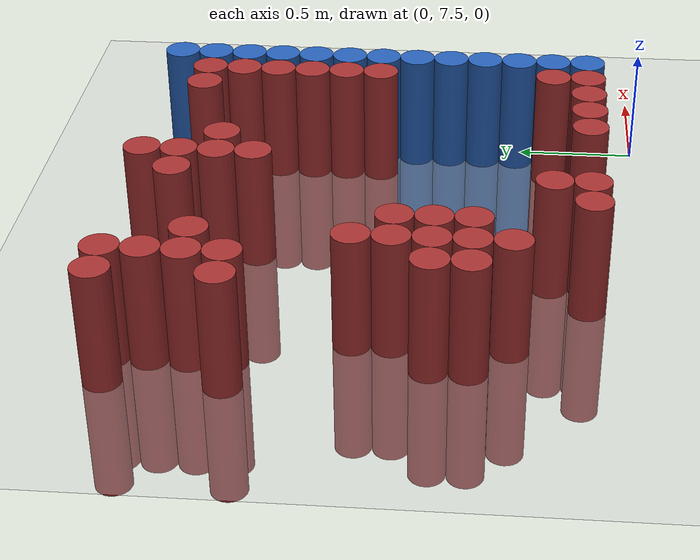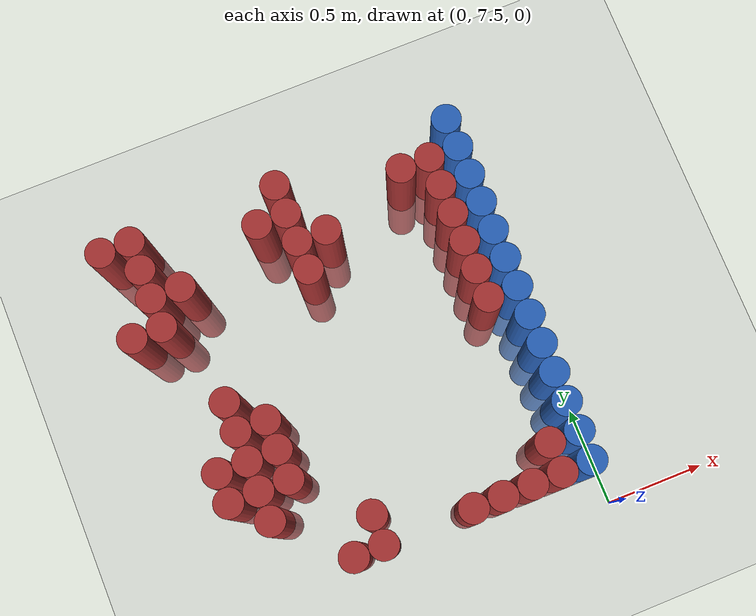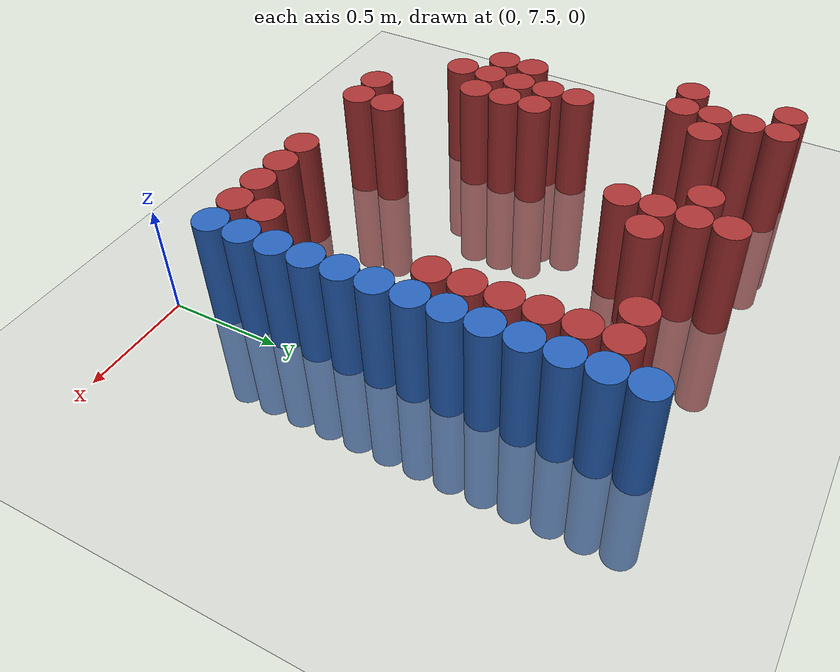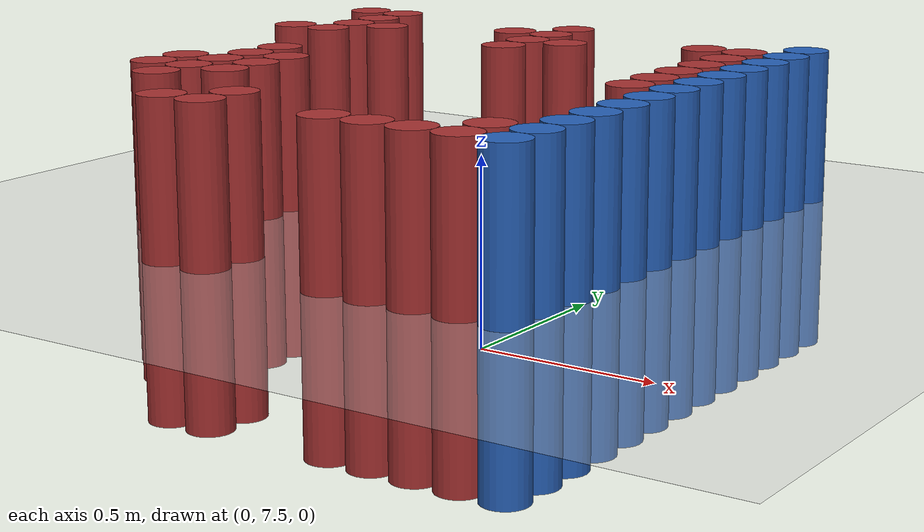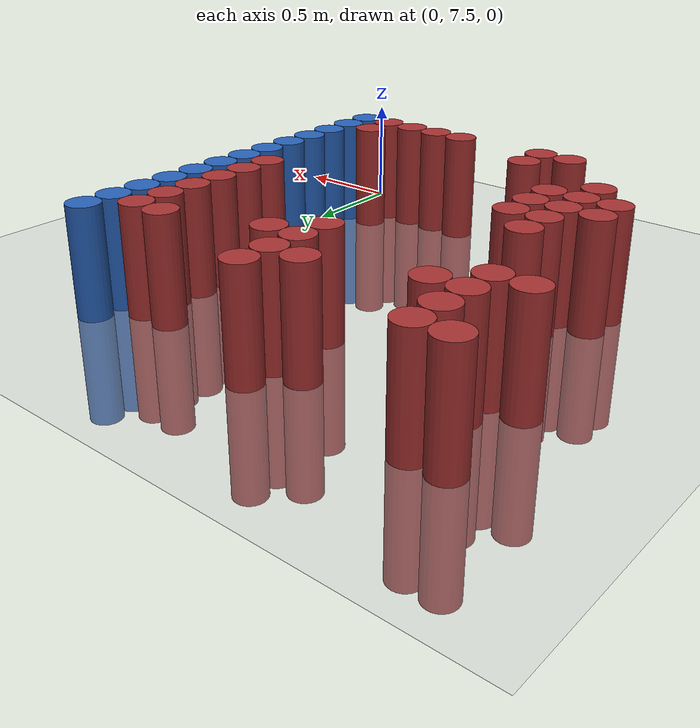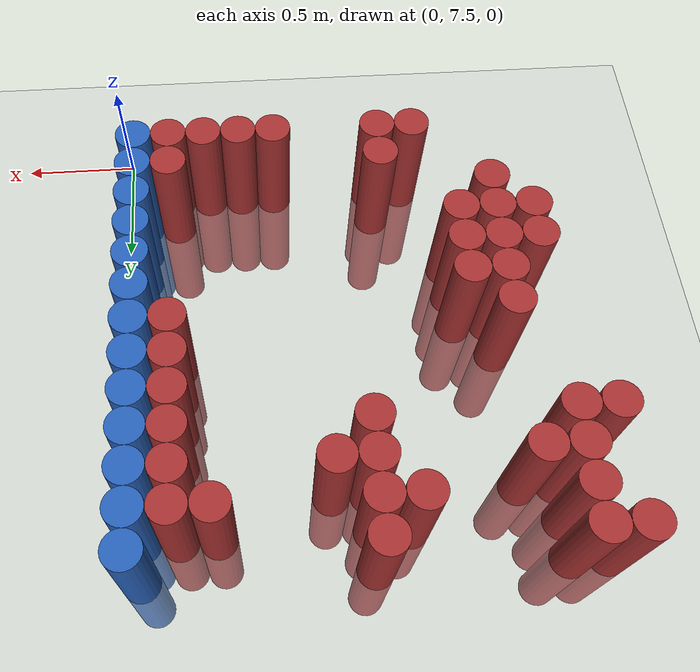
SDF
<sdf version="1.6">
 <world name="default">
  <model name="ground_plane">
   <static>1</static>
   <link name="link">
    <collision name="collision">
     <geometry><plane><normal>0 0 1</normal><size>100 100</size></plane></geometry>
     <surface><friction><ode><mu>100</mu><mu2>50</mu2></ode></friction></surface>
    </collision>
    <visual name="visual">
     <cast_shadows>0</cast_shadows>
     <geometry><plane><normal>0 0 1</normal><size>100 100</size></plane></geometry>
     <material>
      <script><uri>file://media/materials/scripts/gazebo.material</uri><name>Gazebo/Grey</name></script>
     </material>
    </visual>
   </link>
  </model>
  <model name="unit_cylinder_235">
   <static>1</static>
   <pose>-1.875000 9.075000 0.000000 0.000000 0.000000 0.000000</pose>
   <link name="link">
    <inertial>
     <mass>1</mass>
     <inertia><ixx>0.145833</ixx><ixy>0</ixy><ixz>0</ixz><iyy>0.145833</iyy><iyz>0</iyz><izz>0.125</izz></inertia>
    </inertial>
    <collision name="collision">
     <geometry><cylinder><radius>0.075000</radius><length>1</length></cylinder></geometry>
    </collision>
    <visual name="visual">
     <geometry><cylinder><radius>0.075000</radius><length>1</length></cylinder></geometry>
     <material>
      <ambient>0.648000 0.192000 0.192000 1</ambient>
      <diffuse>0.648000 0.192000 0.192000 1</diffuse>
     </material>
     <material>
      <script><name>Gazebo/Grey</name><uri>file://media/materials/scripts/gazebo.material</uri></script>
     </material>
    </visual>
   </link>
  </model>
  <model name="unit_cylinder_236">
   <static>1</static>
   <pose>-1.875000 9.525000 0.000000 0.000000 0.000000 0.000000</pose>
   <link name="link">
    <inertial>
     <mass>1</mass>
     <inertia><ixx>0.145833</ixx><ixy>0</ixy><ixz>0</ixz><iyy>0.145833</iyy><iyz>0</iyz><izz>0.125</izz></inertia>
    </inertial>
    <collision name="collision">
     <geometry><cylinder><radius>0.075000</radius><length>1</length></cylinder></geometry>
    </collision>
    <visual name="visual">
     <geometry><cylinder><radius>0.075000</radius><length>1</length></cylinder></geometry>
     <material>
      <ambient>0.648000 0.192000 0.192000 1</ambient>
      <diffuse>0.648000 0.192000 0.192000 1</diffuse>
     </material>
     <material>
      <script><name>Gazebo/Grey</name><uri>file://media/materials/scripts/gazebo.material</uri></script>
     </material>
    </visual>
   </link>
  </model>
  <model name="unit_cylinder_242">
   <static>1</static>
   <pose>-1.725000 8.175000 0.000000 0.000000 0.000000 0.000000</pose>
   <link name="link">
    <inertial>
     <mass>1</mass>
     <inertia><ixx>0.145833</ixx><ixy>0</ixy><ixz>0</ixz><iyy>0.145833</iyy><iyz>0</iyz><izz>0.125</izz></inertia>
    </inertial>
    <collision name="collision">
     <geometry><cylinder><radius>0.075000</radius><length>1</length></cylinder></geometry>
    </collision>
    <visual name="visual">
     <geometry><cylinder><radius>0.075000</radius><length>1</length></cylinder></geometry>
     <material>
      <ambient>0.648000 0.192000 0.192000 1</ambient>
      <diffuse>0.648000 0.192000 0.192000 1</diffuse>
     </material>
     <material>
      <script><name>Gazebo/Grey</name><uri>file://media/materials/scripts/gazebo.material</uri></script>
     </material>
    </visual>
   </link>
  </model>
  <model name="unit_cylinder_243">
   <static>1</static>
   <pose>-1.725000 8.325000 0.000000 0.000000 0.000000 0.000000</pose>
   <link name="link">
    <inertial>
     <mass>1</mass>
     <inertia><ixx>0.145833</ixx><ixy>0</ixy><ixz>0</ixz><iyy>0.145833</iyy><iyz>0</iyz><izz>0.125</izz></inertia>
    </inertial>
    <collision name="collision">
     <geometry><cylinder><radius>0.075000</radius><length>1</length></cylinder></geometry>
    </collision>
    <visual name="visual">
     <geometry><cylinder><radius>0.075000</radius><length>1</length></cylinder></geometry>
     <material>
      <ambient>0.648000 0.192000 0.192000 1</ambient>
      <diffuse>0.648000 0.192000 0.192000 1</diffuse>
     </material>
     <material>
      <script><name>Gazebo/Grey</name><uri>file://media/materials/scripts/gazebo.material</uri></script>
     </material>
    </visual>
   </link>
  </model>
  <model name="unit_cylinder_244">
   <static>1</static>
   <pose>-1.725000 9.075000 0.000000 0.000000 0.000000 0.000000</pose>
   <link name="link">
    <inertial>
     <mass>1</mass>
     <inertia><ixx>0.145833</ixx><ixy>0</ixy><ixz>0</ixz><iyy>0.145833</iyy><iyz>0</iyz><izz>0.125</izz></inertia>
    </inertial>
    <collision name="collision">
     <geometry><cylinder><radius>0.075000</radius><length>1</length></cylinder></geometry>
    </collision>
    <visual name="visual">
     <geometry><cylinder><radius>0.075000</radius><length>1</length></cylinder></geometry>
     <material>
      <ambient>0.648000 0.192000 0.192000 1</ambient>
      <diffuse>0.648000 0.192000 0.192000 1</diffuse>
     </material>
     <material>
      <script><name>Gazebo/Grey</name><uri>file://media/materials/scripts/gazebo.material</uri></script>
     </material>
    </visual>
   </link>
  </model>
  <model name="unit_cylinder_245">
   <static>1</static>
   <pose>-1.725000 9.225000 0.000000 0.000000 0.000000 0.000000</pose>
   <link name="link">
    <inertial>
     <mass>1</mass>
     <inertia><ixx>0.145833</ixx><ixy>0</ixy><ixz>0</ixz><iyy>0.145833</iyy><iyz>0</iyz><izz>0.125</izz></inertia>
    </inertial>
    <collision name="collision">
     <geometry><cylinder><radius>0.075000</radius><length>1</length></cylinder></geometry>
    </collision>
    <visual name="visual">
     <geometry><cylinder><radius>0.075000</radius><length>1</length></cylinder></geometry>
     <material>
      <ambient>0.648000 0.192000 0.192000 1</ambient>
      <diffuse>0.648000 0.192000 0.192000 1</diffuse>
     </material>
     <material>
      <script><name>Gazebo/Grey</name><uri>file://media/materials/scripts/gazebo.material</uri></script>
     </material>
    </visual>
   </link>
  </model>
  <model name="unit_cylinder_246">
   <static>1</static>
   <pose>-1.725000 9.375000 0.000000 0.000000 0.000000 0.000000</pose>
   <link name="link">
    <inertial>
     <mass>1</mass>
     <inertia><ixx>0.145833</ixx><ixy>0</ixy><ixz>0</ixz><iyy>0.145833</iyy><iyz>0</iyz><izz>0.125</izz></inertia>
    </inertial>
    <collision name="collision">
     <geometry><cylinder><radius>0.075000</radius><length>1</length></cylinder></geometry>
    </collision>
    <visual name="visual">
     <geometry><cylinder><radius>0.075000</radius><length>1</length></cylinder></geometry>
     <material>
      <ambient>0.648000 0.192000 0.192000 1</ambient>
      <diffuse>0.648000 0.192000 0.192000 1</diffuse>
     </material>
     <material>
      <script><name>Gazebo/Grey</name><uri>file://media/materials/scripts/gazebo.material</uri></script>
     </material>
    </visual>
   </link>
  </model>
  <model name="unit_cylinder_247">
   <static>1</static>
   <pose>-1.725000 9.525000 0.000000 0.000000 0.000000 0.000000</pose>
   <link name="link">
    <inertial>
     <mass>1</mass>
     <inertia><ixx>0.145833</ixx><ixy>0</ixy><ixz>0</ixz><iyy>0.145833</iyy><iyz>0</iyz><izz>0.125</izz></inertia>
    </inertial>
    <collision name="collision">
     <geometry><cylinder><radius>0.075000</radius><length>1</length></cylinder></geometry>
    </collision>
    <visual name="visual">
     <geometry><cylinder><radius>0.075000</radius><length>1</length></cylinder></geometry>
     <material>
      <ambient>0.648000 0.192000 0.192000 1</ambient>
      <diffuse>0.648000 0.192000 0.192000 1</diffuse>
     </material>
     <material>
      <script><name>Gazebo/Grey</name><uri>file://media/materials/scripts/gazebo.material</uri></script>
     </material>
    </visual>
   </link>
  </model>
  <model name="unit_cylinder_250">
   <static>1</static>
   <pose>-1.575000 8.025000 0.000000 0.000000 0.000000 0.000000</pose>
   <link name="link">
    <inertial>
     <mass>1</mass>
     <inertia><ixx>0.145833</ixx><ixy>0</ixy><ixz>0</ixz><iyy>0.145833</iyy><iyz>0</iyz><izz>0.125</izz></inertia>
    </inertial>
    <collision name="collision">
     <geometry><cylinder><radius>0.075000</radius><length>1</length></cylinder></geometry>
    </collision>
    <visual name="visual">
     <geometry><cylinder><radius>0.075000</radius><length>1</length></cylinder></geometry>
     <material>
      <ambient>0.648000 0.192000 0.192000 1</ambient>
      <diffuse>0.648000 0.192000 0.192000 1</diffuse>
     </material>
     <material>
      <script><name>Gazebo/Grey</name><uri>file://media/materials/scripts/gazebo.material</uri></script>
     </material>
    </visual>
   </link>
  </model>
  <model name="unit_cylinder_251">
   <static>1</static>
   <pose>-1.575000 8.175000 0.000000 0.000000 0.000000 0.000000</pose>
   <link name="link">
    <inertial>
     <mass>1</mass>
     <inertia><ixx>0.145833</ixx><ixy>0</ixy><ixz>0</ixz><iyy>0.145833</iyy><iyz>0</iyz><izz>0.125</izz></inertia>
    </inertial>
    <collision name="collision">
     <geometry><cylinder><radius>0.075000</radius><length>1</length></cylinder></geometry>
    </collision>
    <visual name="visual">
     <geometry><cylinder><radius>0.075000</radius><length>1</length></cylinder></geometry>
     <material>
      <ambient>0.648000 0.192000 0.192000 1</ambient>
      <diffuse>0.648000 0.192000 0.192000 1</diffuse>
     </material>
     <material>
      <script><name>Gazebo/Grey</name><uri>file://media/materials/scripts/gazebo.material</uri></script>
     </material>
    </visual>
   </link>
  </model>
  <model name="unit_cylinder_252">
   <static>1</static>
   <pose>-1.575000 8.325000 0.000000 0.000000 0.000000 0.000000</pose>
   <link name="link">
    <inertial>
     <mass>1</mass>
     <inertia><ixx>0.145833</ixx><ixy>0</ixy><ixz>0</ixz><iyy>0.145833</iyy><iyz>0</iyz><izz>0.125</izz></inertia>
    </inertial>
    <collision name="collision">
     <geometry><cylinder><radius>0.075000</radius><length>1</length></cylinder></geometry>
    </collision>
    <visual name="visual">
     <geometry><cylinder><radius>0.075000</radius><length>1</length></cylinder></geometry>
     <material>
      <ambient>0.648000 0.192000 0.192000 1</ambient>
      <diffuse>0.648000 0.192000 0.192000 1</diffuse>
     </material>
     <material>
      <script><name>Gazebo/Grey</name><uri>file://media/materials/scripts/gazebo.material</uri></script>
     </material>
    </visual>
   </link>
  </model>
  <model name="unit_cylinder_253">
   <static>1</static>
   <pose>-1.575000 8.475000 0.000000 0.000000 0.000000 0.000000</pose>
   <link name="link">
    <inertial>
     <mass>1</mass>
     <inertia><ixx>0.145833</ixx><ixy>0</ixy><ixz>0</ixz><iyy>0.145833</iyy><iyz>0</iyz><izz>0.125</izz></inertia>
    </inertial>
    <collision name="collision">
     <geometry><cylinder><radius>0.075000</radius><length>1</length></cylinder></geometry>
    </collision>
    <visual name="visual">
     <geometry><cylinder><radius>0.075000</radius><length>1</length></cylinder></geometry>
     <material>
      <ambient>0.648000 0.192000 0.192000 1</ambient>
      <diffuse>0.648000 0.192000 0.192000 1</diffuse>
     </material>
     <material>
      <script><name>Gazebo/Grey</name><uri>file://media/materials/scripts/gazebo.material</uri></script>
     </material>
    </visual>
   </link>
  </model>
  <model name="unit_cylinder_254">
   <static>1</static>
   <pose>-1.575000 8.625000 0.000000 0.000000 0.000000 0.000000</pose>
   <link name="link">
    <inertial>
     <mass>1</mass>
     <inertia><ixx>0.145833</ixx><ixy>0</ixy><ixz>0</ixz><iyy>0.145833</iyy><iyz>0</iyz><izz>0.125</izz></inertia>
    </inertial>
    <collision name="collision">
     <geometry><cylinder><radius>0.075000</radius><length>1</length></cylinder></geometry>
    </collision>
    <visual name="visual">
     <geometry><cylinder><radius>0.075000</radius><length>1</length></cylinder></geometry>
     <material>
      <ambient>0.648000 0.192000 0.192000 1</ambient>
      <diffuse>0.648000 0.192000 0.192000 1</diffuse>
     </material>
     <material>
      <script><name>Gazebo/Grey</name><uri>file://media/materials/scripts/gazebo.material</uri></script>
     </material>
    </visual>
   </link>
  </model>
  <model name="unit_cylinder_255">
   <static>1</static>
   <pose>-1.575000 9.225000 0.000000 0.000000 0.000000 0.000000</pose>
   <link name="link">
    <inertial>
     <mass>1</mass>
     <inertia><ixx>0.145833</ixx><ixy>0</ixy><ixz>0</ixz><iyy>0.145833</iyy><iyz>0</iyz><izz>0.125</izz></inertia>
    </inertial>
    <collision name="collision">
     <geometry><cylinder><radius>0.075000</radius><length>1</length></cylinder></geometry>
    </collision>
    <visual name="visual">
     <geometry><cylinder><radius>0.075000</radius><length>1</length></cylinder></geometry>
     <material>
      <ambient>0.648000 0.192000 0.192000 1</ambient>
      <diffuse>0.648000 0.192000 0.192000 1</diffuse>
     </material>
     <material>
      <script><name>Gazebo/Grey</name><uri>file://media/materials/scripts/gazebo.material</uri></script>
     </material>
    </visual>
   </link>
  </model>
  <model name="unit_cylinder_262">
   <static>1</static>
   <pose>-1.425000 8.175000 0.000000 0.000000 0.000000 0.000000</pose>
   <link name="link">
    <inertial>
     <mass>1</mass>
     <inertia><ixx>0.145833</ixx><ixy>0</ixy><ixz>0</ixz><iyy>0.145833</iyy><iyz>0</iyz><izz>0.125</izz></inertia>
    </inertial>
    <collision name="collision">
     <geometry><cylinder><radius>0.075000</radius><length>1</length></cylinder></geometry>
    </collision>
    <visual name="visual">
     <geometry><cylinder><radius>0.075000</radius><length>1</length></cylinder></geometry>
     <material>
      <ambient>0.648000 0.192000 0.192000 1</ambient>
      <diffuse>0.648000 0.192000 0.192000 1</diffuse>
     </material>
     <material>
      <script><name>Gazebo/Grey</name><uri>file://media/materials/scripts/gazebo.material</uri></script>
     </material>
    </visual>
   </link>
  </model>
  <model name="unit_cylinder_263">
   <static>1</static>
   <pose>-1.425000 8.325000 0.000000 0.000000 0.000000 0.000000</pose>
   <link name="link">
    <inertial>
     <mass>1</mass>
     <inertia><ixx>0.145833</ixx><ixy>0</ixy><ixz>0</ixz><iyy>0.145833</iyy><iyz>0</iyz><izz>0.125</izz></inertia>
    </inertial>
    <collision name="collision">
     <geometry><cylinder><radius>0.075000</radius><length>1</length></cylinder></geometry>
    </collision>
    <visual name="visual">
     <geometry><cylinder><radius>0.075000</radius><length>1</length></cylinder></geometry>
     <material>
      <ambient>0.648000 0.192000 0.192000 1</ambient>
      <diffuse>0.648000 0.192000 0.192000 1</diffuse>
     </material>
     <material>
      <script><name>Gazebo/Grey</name><uri>file://media/materials/scripts/gazebo.material</uri></script>
     </material>
    </visual>
   </link>
  </model>
  <model name="unit_cylinder_264">
   <static>1</static>
   <pose>-1.425000 8.475000 0.000000 0.000000 0.000000 0.000000</pose>
   <link name="link">
    <inertial>
     <mass>1</mass>
     <inertia><ixx>0.145833</ixx><ixy>0</ixy><ixz>0</ixz><iyy>0.145833</iyy><iyz>0</iyz><izz>0.125</izz></inertia>
    </inertial>
    <collision name="collision">
     <geometry><cylinder><radius>0.075000</radius><length>1</length></cylinder></geometry>
    </collision>
    <visual name="visual">
     <geometry><cylinder><radius>0.075000</radius><length>1</length></cylinder></geometry>
     <material>
      <ambient>0.648000 0.192000 0.192000 1</ambient>
      <diffuse>0.648000 0.192000 0.192000 1</diffuse>
     </material>
     <material>
      <script><name>Gazebo/Grey</name><uri>file://media/materials/scripts/gazebo.material</uri></script>
     </material>
    </visual>
   </link>
  </model>
  <model name="unit_cylinder_271">
   <static>1</static>
   <pose>-1.275000 7.725000 0.000000 0.000000 0.000000 0.000000</pose>
   <link name="link">
    <inertial>
     <mass>1</mass>
     <inertia><ixx>0.145833</ixx><ixy>0</ixy><ixz>0</ixz><iyy>0.145833</iyy><iyz>0</iyz><izz>0.125</izz></inertia>
    </inertial>
    <collision name="collision">
     <geometry><cylinder><radius>0.075000</radius><length>1</length></cylinder></geometry>
    </collision>
    <visual name="visual">
     <geometry><cylinder><radius>0.075000</radius><length>1</length></cylinder></geometry>
     <material>
      <ambient>0.648000 0.192000 0.192000 1</ambient>
      <diffuse>0.648000 0.192000 0.192000 1</diffuse>
     </material>
     <material>
      <script><name>Gazebo/Grey</name><uri>file://media/materials/scripts/gazebo.material</uri></script>
     </material>
    </visual>
   </link>
  </model>
  <model name="unit_cylinder_275">
   <static>1</static>
   <pose>-1.125000 7.725000 0.000000 0.000000 0.000000 0.000000</pose>
   <link name="link">
    <inertial>
     <mass>1</mass>
     <inertia><ixx>0.145833</ixx><ixy>0</ixy><ixz>0</ixz><iyy>0.145833</iyy><iyz>0</iyz><izz>0.125</izz></inertia>
    </inertial>
    <collision name="collision">
     <geometry><cylinder><radius>0.075000</radius><length>1</length></cylinder></geometry>
    </collision>
    <visual name="visual">
     <geometry><cylinder><radius>0.075000</radius><length>1</length></cylinder></geometry>
     <material>
      <ambient>0.648000 0.192000 0.192000 1</ambient>
      <diffuse>0.648000 0.192000 0.192000 1</diffuse>
     </material>
     <material>
      <script><name>Gazebo/Grey</name><uri>file://media/materials/scripts/gazebo.material</uri></script>
     </material>
    </visual>
   </link>
  </model>
  <model name="unit_cylinder_276">
   <static>1</static>
   <pose>-1.125000 7.875000 0.000000 0.000000 0.000000 0.000000</pose>
   <link name="link">
    <inertial>
     <mass>1</mass>
     <inertia><ixx>0.145833</ixx><ixy>0</ixy><ixz>0</ixz><iyy>0.145833</iyy><iyz>0</iyz><izz>0.125</izz></inertia>
    </inertial>
    <collision name="collision">
     <geometry><cylinder><radius>0.075000</radius><length>1</length></cylinder></geometry>
    </collision>
    <visual name="visual">
     <geometry><cylinder><radius>0.075000</radius><length>1</length></cylinder></geometry>
     <material>
      <ambient>0.648000 0.192000 0.192000 1</ambient>
      <diffuse>0.648000 0.192000 0.192000 1</diffuse>
     </material>
     <material>
      <script><name>Gazebo/Grey</name><uri>file://media/materials/scripts/gazebo.material</uri></script>
     </material>
    </visual>
   </link>
  </model>
  <model name="unit_cylinder_277">
   <static>1</static>
   <pose>-1.125000 9.375000 0.000000 0.000000 0.000000 0.000000</pose>
   <link name="link">
    <inertial>
     <mass>1</mass>
     <inertia><ixx>0.145833</ixx><ixy>0</ixy><ixz>0</ixz><iyy>0.145833</iyy><iyz>0</iyz><izz>0.125</izz></inertia>
    </inertial>
    <collision name="collision">
     <geometry><cylinder><radius>0.075000</radius><length>1</length></cylinder></geometry>
    </collision>
    <visual name="visual">
     <geometry><cylinder><radius>0.075000</radius><length>1</length></cylinder></geometry>
     <material>
      <ambient>0.648000 0.192000 0.192000 1</ambient>
      <diffuse>0.648000 0.192000 0.192000 1</diffuse>
     </material>
     <material>
      <script><name>Gazebo/Grey</name><uri>file://media/materials/scripts/gazebo.material</uri></script>
     </material>
    </visual>
   </link>
  </model>
  <model name="unit_cylinder_278">
   <static>1</static>
   <pose>-0.975000 9.075000 0.000000 0.000000 0.000000 0.000000</pose>
   <link name="link">
    <inertial>
     <mass>1</mass>
     <inertia><ixx>0.145833</ixx><ixy>0</ixy><ixz>0</ixz><iyy>0.145833</iyy><iyz>0</iyz><izz>0.125</izz></inertia>
    </inertial>
    <collision name="collision">
     <geometry><cylinder><radius>0.075000</radius><length>1</length></cylinder></geometry>
    </collision>
    <visual name="visual">
     <geometry><cylinder><radius>0.075000</radius><length>1</length></cylinder></geometry>
     <material>
      <ambient>0.648000 0.192000 0.192000 1</ambient>
      <diffuse>0.648000 0.192000 0.192000 1</diffuse>
     </material>
     <material>
      <script><name>Gazebo/Grey</name><uri>file://media/materials/scripts/gazebo.material</uri></script>
     </material>
    </visual>
   </link>
  </model>
  <model name="unit_cylinder_279">
   <static>1</static>
   <pose>-0.975000 9.225000 0.000000 0.000000 0.000000 0.000000</pose>
   <link name="link">
    <inertial>
     <mass>1</mass>
     <inertia><ixx>0.145833</ixx><ixy>0</ixy><ixz>0</ixz><iyy>0.145833</iyy><iyz>0</iyz><izz>0.125</izz></inertia>
    </inertial>
    <collision name="collision">
     <geometry><cylinder><radius>0.075000</radius><length>1</length></cylinder></geometry>
    </collision>
    <visual name="visual">
     <geometry><cylinder><radius>0.075000</radius><length>1</length></cylinder></geometry>
     <material>
      <ambient>0.648000 0.192000 0.192000 1</ambient>
      <diffuse>0.648000 0.192000 0.192000 1</diffuse>
     </material>
     <material>
      <script><name>Gazebo/Grey</name><uri>file://media/materials/scripts/gazebo.material</uri></script>
     </material>
    </visual>
   </link>
  </model>
  <model name="unit_cylinder_280">
   <static>1</static>
   <pose>-0.975000 9.375000 0.000000 0.000000 0.000000 0.000000</pose>
   <link name="link">
    <inertial>
     <mass>1</mass>
     <inertia><ixx>0.145833</ixx><ixy>0</ixy><ixz>0</ixz><iyy>0.145833</iyy><iyz>0</iyz><izz>0.125</izz></inertia>
    </inertial>
    <collision name="collision">
     <geometry><cylinder><radius>0.075000</radius><length>1</length></cylinder></geometry>
    </collision>
    <visual name="visual">
     <geometry><cylinder><radius>0.075000</radius><length>1</length></cylinder></geometry>
     <material>
      <ambient>0.648000 0.192000 0.192000 1</ambient>
      <diffuse>0.648000 0.192000 0.192000 1</diffuse>
     </material>
     <material>
      <script><name>Gazebo/Grey</name><uri>file://media/materials/scripts/gazebo.material</uri></script>
     </material>
    </visual>
   </link>
  </model>
  <model name="unit_cylinder_281">
   <static>1</static>
   <pose>-0.975000 9.525000 0.000000 0.000000 0.000000 0.000000</pose>
   <link name="link">
    <inertial>
     <mass>1</mass>
     <inertia><ixx>0.145833</ixx><ixy>0</ixy><ixz>0</ixz><iyy>0.145833</iyy><iyz>0</iyz><izz>0.125</izz></inertia>
    </inertial>
    <collision name="collision">
     <geometry><cylinder><radius>0.075000</radius><length>1</length></cylinder></geometry>
    </collision>
    <visual name="visual">
     <geometry><cylinder><radius>0.075000</radius><length>1</length></cylinder></geometry>
     <material>
      <ambient>0.648000 0.192000 0.192000 1</ambient>
      <diffuse>0.648000 0.192000 0.192000 1</diffuse>
     </material>
     <material>
      <script><name>Gazebo/Grey</name><uri>file://media/materials/scripts/gazebo.material</uri></script>
     </material>
    </visual>
   </link>
  </model>
  <model name="unit_cylinder_283">
   <static>1</static>
   <pose>-0.825000 9.225000 0.000000 0.000000 0.000000 0.000000</pose>
   <link name="link">
    <inertial>
     <mass>1</mass>
     <inertia><ixx>0.145833</ixx><ixy>0</ixy><ixz>0</ixz><iyy>0.145833</iyy><iyz>0</iyz><izz>0.125</izz></inertia>
    </inertial>
    <collision name="collision">
     <geometry><cylinder><radius>0.075000</radius><length>1</length></cylinder></geometry>
    </collision>
    <visual name="visual">
     <geometry><cylinder><radius>0.075000</radius><length>1</length></cylinder></geometry>
     <material>
      <ambient>0.648000 0.192000 0.192000 1</ambient>
      <diffuse>0.648000 0.192000 0.192000 1</diffuse>
     </material>
     <material>
      <script><name>Gazebo/Grey</name><uri>file://media/materials/scripts/gazebo.material</uri></script>
     </material>
    </visual>
   </link>
  </model>
  <model name="unit_cylinder_290">
   <static>1</static>
   <pose>-0.675000 7.725000 0.000000 0.000000 0.000000 0.000000</pose>
   <link name="link">
    <inertial>
     <mass>1</mass>
     <inertia><ixx>0.145833</ixx><ixy>0</ixy><ixz>0</ixz><iyy>0.145833</iyy><iyz>0</iyz><izz>0.125</izz></inertia>
    </inertial>
    <collision name="collision">
     <geometry><cylinder><radius>0.075000</radius><length>1</length></cylinder></geometry>
    </collision>
    <visual name="visual">
     <geometry><cylinder><radius>0.075000</radius><length>1</length></cylinder></geometry>
     <material>
      <ambient>0.648000 0.192000 0.192000 1</ambient>
      <diffuse>0.648000 0.192000 0.192000 1</diffuse>
     </material>
     <material>
      <script><name>Gazebo/Grey</name><uri>file://media/materials/scripts/gazebo.material</uri></script>
     </material>
    </visual>
   </link>
  </model>
  <model name="unit_cylinder_297">
   <static>1</static>
   <pose>-0.525000 7.725000 0.000000 0.000000 0.000000 0.000000</pose>
   <link name="link">
    <inertial>
     <mass>1</mass>
     <inertia><ixx>0.145833</ixx><ixy>0</ixy><ixz>0</ixz><iyy>0.145833</iyy><iyz>0</iyz><izz>0.125</izz></inertia>
    </inertial>
    <collision name="collision">
     <geometry><cylinder><radius>0.075000</radius><length>1</length></cylinder></geometry>
    </collision>
    <visual name="visual">
     <geometry><cylinder><radius>0.075000</radius><length>1</length></cylinder></geometry>
     <material>
      <ambient>0.648000 0.192000 0.192000 1</ambient>
      <diffuse>0.648000 0.192000 0.192000 1</diffuse>
     </material>
     <material>
      <script><name>Gazebo/Grey</name><uri>file://media/materials/scripts/gazebo.material</uri></script>
     </material>
    </visual>
   </link>
  </model>
  <model name="unit_cylinder_304">
   <static>1</static>
   <pose>-0.375000 7.725000 0.000000 0.000000 0.000000 0.000000</pose>
   <link name="link">
    <inertial>
     <mass>1</mass>
     <inertia><ixx>0.145833</ixx><ixy>0</ixy><ixz>0</ixz><iyy>0.145833</iyy><iyz>0</iyz><izz>0.125</izz></inertia>
    </inertial>
    <collision name="collision">
     <geometry><cylinder><radius>0.075000</radius><length>1</length></cylinder></geometry>
    </collision>
    <visual name="visual">
     <geometry><cylinder><radius>0.075000</radius><length>1</length></cylinder></geometry>
     <material>
      <ambient>0.648000 0.192000 0.192000 1</ambient>
      <diffuse>0.648000 0.192000 0.192000 1</diffuse>
     </material>
     <material>
      <script><name>Gazebo/Grey</name><uri>file://media/materials/scripts/gazebo.material</uri></script>
     </material>
    </visual>
   </link>
  </model>
  <model name="unit_cylinder_305">
   <static>1</static>
   <pose>-0.375000 9.375000 0.000000 0.000000 0.000000 0.000000</pose>
   <link name="link">
    <inertial>
     <mass>1</mass>
     <inertia><ixx>0.145833</ixx><ixy>0</ixy><ixz>0</ixz><iyy>0.145833</iyy><iyz>0</iyz><izz>0.125</izz></inertia>
    </inertial>
    <collision name="collision">
     <geometry><cylinder><radius>0.075000</radius><length>1</length></cylinder></geometry>
    </collision>
    <visual name="visual">
     <geometry><cylinder><radius>0.075000</radius><length>1</length></cylinder></geometry>
     <material>
      <ambient>0.648000 0.192000 0.192000 1</ambient>
      <diffuse>0.648000 0.192000 0.192000 1</diffuse>
     </material>
     <material>
      <script><name>Gazebo/Grey</name><uri>file://media/materials/scripts/gazebo.material</uri></script>
     </material>
    </visual>
   </link>
  </model>
  <model name="unit_cylinder_317">
   <static>1</static>
   <pose>-0.225000 7.725000 0.000000 0.000000 0.000000 0.000000</pose>
   <link name="link">
    <inertial>
     <mass>1</mass>
     <inertia><ixx>0.145833</ixx><ixy>0</ixy><ixz>0</ixz><iyy>0.145833</iyy><iyz>0</iyz><izz>0.125</izz></inertia>
    </inertial>
    <collision name="collision">
     <geometry><cylinder><radius>0.075000</radius><length>1</length></cylinder></geometry>
    </collision>
    <visual name="visual">
     <geometry><cylinder><radius>0.075000</radius><length>1</length></cylinder></geometry>
     <material>
      <ambient>0.648000 0.192000 0.192000 1</ambient>
      <diffuse>0.648000 0.192000 0.192000 1</diffuse>
     </material>
     <material>
      <script><name>Gazebo/Grey</name><uri>file://media/materials/scripts/gazebo.material</uri></script>
     </material>
    </visual>
   </link>
  </model>
  <model name="unit_cylinder_318">
   <static>1</static>
   <pose>-0.225000 7.875000 0.000000 0.000000 0.000000 0.000000</pose>
   <link name="link">
    <inertial>
     <mass>1</mass>
     <inertia><ixx>0.145833</ixx><ixy>0</ixy><ixz>0</ixz><iyy>0.145833</iyy><iyz>0</iyz><izz>0.125</izz></inertia>
    </inertial>
    <collision name="collision">
     <geometry><cylinder><radius>0.075000</radius><length>1</length></cylinder></geometry>
    </collision>
    <visual name="visual">
     <geometry><cylinder><radius>0.075000</radius><length>1</length></cylinder></geometry>
     <material>
      <ambient>0.648000 0.192000 0.192000 1</ambient>
      <diffuse>0.648000 0.192000 0.192000 1</diffuse>
     </material>
     <material>
      <script><name>Gazebo/Grey</name><uri>file://media/materials/scripts/gazebo.material</uri></script>
     </material>
    </visual>
   </link>
  </model>
  <model name="unit_cylinder_319">
   <static>1</static>
   <pose>-0.225000 8.625000 0.000000 0.000000 0.000000 0.000000</pose>
   <link name="link">
    <inertial>
     <mass>1</mass>
     <inertia><ixx>0.145833</ixx><ixy>0</ixy><ixz>0</ixz><iyy>0.145833</iyy><iyz>0</iyz><izz>0.125</izz></inertia>
    </inertial>
    <collision name="collision">
     <geometry><cylinder><radius>0.075000</radius><length>1</length></cylinder></geometry>
    </collision>
    <visual name="visual">
     <geometry><cylinder><radius>0.075000</radius><length>1</length></cylinder></geometry>
     <material>
      <ambient>0.648000 0.192000 0.192000 1</ambient>
      <diffuse>0.648000 0.192000 0.192000 1</diffuse>
     </material>
     <material>
      <script><name>Gazebo/Grey</name><uri>file://media/materials/scripts/gazebo.material</uri></script>
     </material>
    </visual>
   </link>
  </model>
  <model name="unit_cylinder_320">
   <static>1</static>
   <pose>-0.225000 8.775000 0.000000 0.000000 0.000000 0.000000</pose>
   <link name="link">
    <inertial>
     <mass>1</mass>
     <inertia><ixx>0.145833</ixx><ixy>0</ixy><ixz>0</ixz><iyy>0.145833</iyy><iyz>0</iyz><izz>0.125</izz></inertia>
    </inertial>
    <collision name="collision">
     <geometry><cylinder><radius>0.075000</radius><length>1</length></cylinder></geometry>
    </collision>
    <visual name="visual">
     <geometry><cylinder><radius>0.075000</radius><length>1</length></cylinder></geometry>
     <material>
      <ambient>0.648000 0.192000 0.192000 1</ambient>
      <diffuse>0.648000 0.192000 0.192000 1</diffuse>
     </material>
     <material>
      <script><name>Gazebo/Grey</name><uri>file://media/materials/scripts/gazebo.material</uri></script>
     </material>
    </visual>
   </link>
  </model>
  <model name="unit_cylinder_321">
   <static>1</static>
   <pose>-0.225000 8.925000 0.000000 0.000000 0.000000 0.000000</pose>
   <link name="link">
    <inertial>
     <mass>1</mass>
     <inertia><ixx>0.145833</ixx><ixy>0</ixy><ixz>0</ixz><iyy>0.145833</iyy><iyz>0</iyz><izz>0.125</izz></inertia>
    </inertial>
    <collision name="collision">
     <geometry><cylinder><radius>0.075000</radius><length>1</length></cylinder></geometry>
    </collision>
    <visual name="visual">
     <geometry><cylinder><radius>0.075000</radius><length>1</length></cylinder></geometry>
     <material>
      <ambient>0.648000 0.192000 0.192000 1</ambient>
      <diffuse>0.648000 0.192000 0.192000 1</diffuse>
     </material>
     <material>
      <script><name>Gazebo/Grey</name><uri>file://media/materials/scripts/gazebo.material</uri></script>
     </material>
    </visual>
   </link>
  </model>
  <model name="unit_cylinder_322">
   <static>1</static>
   <pose>-0.225000 9.075000 0.000000 0.000000 0.000000 0.000000</pose>
   <link name="link">
    <inertial>
     <mass>1</mass>
     <inertia><ixx>0.145833</ixx><ixy>0</ixy><ixz>0</ixz><iyy>0.145833</iyy><iyz>0</iyz><izz>0.125</izz></inertia>
    </inertial>
    <collision name="collision">
     <geometry><cylinder><radius>0.075000</radius><length>1</length></cylinder></geometry>
    </collision>
    <visual name="visual">
     <geometry><cylinder><radius>0.075000</radius><length>1</length></cylinder></geometry>
     <material>
      <ambient>0.648000 0.192000 0.192000 1</ambient>
      <diffuse>0.648000 0.192000 0.192000 1</diffuse>
     </material>
     <material>
      <script><name>Gazebo/Grey</name><uri>file://media/materials/scripts/gazebo.material</uri></script>
     </material>
    </visual>
   </link>
  </model>
  <model name="unit_cylinder_323">
   <static>1</static>
   <pose>-0.225000 9.225000 0.000000 0.000000 0.000000 0.000000</pose>
   <link name="link">
    <inertial>
     <mass>1</mass>
     <inertia><ixx>0.145833</ixx><ixy>0</ixy><ixz>0</ixz><iyy>0.145833</iyy><iyz>0</iyz><izz>0.125</izz></inertia>
    </inertial>
    <collision name="collision">
     <geometry><cylinder><radius>0.075000</radius><length>1</length></cylinder></geometry>
    </collision>
    <visual name="visual">
     <geometry><cylinder><radius>0.075000</radius><length>1</length></cylinder></geometry>
     <material>
      <ambient>0.648000 0.192000 0.192000 1</ambient>
      <diffuse>0.648000 0.192000 0.192000 1</diffuse>
     </material>
     <material>
      <script><name>Gazebo/Grey</name><uri>file://media/materials/scripts/gazebo.material</uri></script>
     </material>
    </visual>
   </link>
  </model>
  <model name="unit_cylinder_324">
   <static>1</static>
   <pose>-0.225000 9.375000 0.000000 0.000000 0.000000 0.000000</pose>
   <link name="link">
    <inertial>
     <mass>1</mass>
     <inertia><ixx>0.145833</ixx><ixy>0</ixy><ixz>0</ixz><iyy>0.145833</iyy><iyz>0</iyz><izz>0.125</izz></inertia>
    </inertial>
    <collision name="collision">
     <geometry><cylinder><radius>0.075000</radius><length>1</length></cylinder></geometry>
    </collision>
    <visual name="visual">
     <geometry><cylinder><radius>0.075000</radius><length>1</length></cylinder></geometry>
     <material>
      <ambient>0.648000 0.192000 0.192000 1</ambient>
      <diffuse>0.648000 0.192000 0.192000 1</diffuse>
     </material>
     <material>
      <script><name>Gazebo/Grey</name><uri>file://media/materials/scripts/gazebo.material</uri></script>
     </material>
    </visual>
   </link>
  </model>
  <model name="unit_cylinder_342">
   <static>1</static>
   <pose>-0.075000 7.725000 0.000000 0.000000 0.000000 0.000000</pose>
   <link name="link">
    <inertial>
     <mass>1</mass>
     <inertia><ixx>0.145833</ixx><ixy>0</ixy><ixz>0</ixz><iyy>0.145833</iyy><iyz>0</iyz><izz>0.125</izz></inertia>
    </inertial>
    <collision name="collision">
     <geometry><cylinder><radius>0.075000</radius><length>1</length></cylinder></geometry>
    </collision>
    <visual name="visual">
     <geometry><cylinder><radius>0.075000</radius><length>1</length></cylinder></geometry>
     <material>
      <ambient>0.152000 0.379000 0.720000 1</ambient>
      <diffuse>0.152000 0.379000 0.720000 1</diffuse>
     </material>
     <material>
      <script><name>Gazebo/Grey</name><uri>file://media/materials/scripts/gazebo.material</uri></script>
     </material>
    </visual>
   </link>
  </model>
  <model name="unit_cylinder_343">
   <static>1</static>
   <pose>-0.075000 7.875000 0.000000 0.000000 0.000000 0.000000</pose>
   <link name="link">
    <inertial>
     <mass>1</mass>
     <inertia><ixx>0.145833</ixx><ixy>0</ixy><ixz>0</ixz><iyy>0.145833</iyy><iyz>0</iyz><izz>0.125</izz></inertia>
    </inertial>
    <collision name="collision">
     <geometry><cylinder><radius>0.075000</radius><length>1</length></cylinder></geometry>
    </collision>
    <visual name="visual">
     <geometry><cylinder><radius>0.075000</radius><length>1</length></cylinder></geometry>
     <material>
      <ambient>0.152000 0.379000 0.720000 1</ambient>
      <diffuse>0.152000 0.379000 0.720000 1</diffuse>
     </material>
     <material>
      <script><name>Gazebo/Grey</name><uri>file://media/materials/scripts/gazebo.material</uri></script>
     </material>
    </visual>
   </link>
  </model>
  <model name="unit_cylinder_344">
   <static>1</static>
   <pose>-0.075000 8.025000 0.000000 0.000000 0.000000 0.000000</pose>
   <link name="link">
    <inertial>
     <mass>1</mass>
     <inertia><ixx>0.145833</ixx><ixy>0</ixy><ixz>0</ixz><iyy>0.145833</iyy><iyz>0</iyz><izz>0.125</izz></inertia>
    </inertial>
    <collision name="collision">
     <geometry><cylinder><radius>0.075000</radius><length>1</length></cylinder></geometry>
    </collision>
    <visual name="visual">
     <geometry><cylinder><radius>0.075000</radius><length>1</length></cylinder></geometry>
     <material>
      <ambient>0.152000 0.379000 0.720000 1</ambient>
      <diffuse>0.152000 0.379000 0.720000 1</diffuse>
     </material>
     <material>
      <script><name>Gazebo/Grey</name><uri>file://media/materials/scripts/gazebo.material</uri></script>
     </material>
    </visual>
   </link>
  </model>
  <model name="unit_cylinder_345">
   <static>1</static>
   <pose>-0.075000 8.175000 0.000000 0.000000 0.000000 0.000000</pose>
   <link name="link">
    <inertial>
     <mass>1</mass>
     <inertia><ixx>0.145833</ixx><ixy>0</ixy><ixz>0</ixz><iyy>0.145833</iyy><iyz>0</iyz><izz>0.125</izz></inertia>
    </inertial>
    <collision name="collision">
     <geometry><cylinder><radius>0.075000</radius><length>1</length></cylinder></geometry>
    </collision>
    <visual name="visual">
     <geometry><cylinder><radius>0.075000</radius><length>1</length></cylinder></geometry>
     <material>
      <ambient>0.152000 0.379000 0.720000 1</ambient>
      <diffuse>0.152000 0.379000 0.720000 1</diffuse>
     </material>
     <material>
      <script><name>Gazebo/Grey</name><uri>file://media/materials/scripts/gazebo.material</uri></script>
     </material>
    </visual>
   </link>
  </model>
  <model name="unit_cylinder_346">
   <static>1</static>
   <pose>-0.075000 8.325000 0.000000 0.000000 0.000000 0.000000</pose>
   <link name="link">
    <inertial>
     <mass>1</mass>
     <inertia><ixx>0.145833</ixx><ixy>0</ixy><ixz>0</ixz><iyy>0.145833</iyy><iyz>0</iyz><izz>0.125</izz></inertia>
    </inertial>
    <collision name="collision">
     <geometry><cylinder><radius>0.075000</radius><length>1</length></cylinder></geometry>
    </collision>
    <visual name="visual">
     <geometry><cylinder><radius>0.075000</radius><length>1</length></cylinder></geometry>
     <material>
      <ambient>0.152000 0.379000 0.720000 1</ambient>
      <diffuse>0.152000 0.379000 0.720000 1</diffuse>
     </material>
     <material>
      <script><name>Gazebo/Grey</name><uri>file://media/materials/scripts/gazebo.material</uri></script>
     </material>
    </visual>
   </link>
  </model>
  <model name="unit_cylinder_347">
   <static>1</static>
   <pose>-0.075000 8.475000 0.000000 0.000000 0.000000 0.000000</pose>
   <link name="link">
    <inertial>
     <mass>1</mass>
     <inertia><ixx>0.145833</ixx><ixy>0</ixy><ixz>0</ixz><iyy>0.145833</iyy><iyz>0</iyz><izz>0.125</izz></inertia>
    </inertial>
    <collision name="collision">
     <geometry><cylinder><radius>0.075000</radius><length>1</length></cylinder></geometry>
    </collision>
    <visual name="visual">
     <geometry><cylinder><radius>0.075000</radius><length>1</length></cylinder></geometry>
     <material>
      <ambient>0.152000 0.379000 0.720000 1</ambient>
      <diffuse>0.152000 0.379000 0.720000 1</diffuse>
     </material>
     <material>
      <script><name>Gazebo/Grey</name><uri>file://media/materials/scripts/gazebo.material</uri></script>
     </material>
    </visual>
   </link>
  </model>
  <model name="unit_cylinder_348">
   <static>1</static>
   <pose>-0.075000 8.625000 0.000000 0.000000 0.000000 0.000000</pose>
   <link name="link">
    <inertial>
     <mass>1</mass>
     <inertia><ixx>0.145833</ixx><ixy>0</ixy><ixz>0</ixz><iyy>0.145833</iyy><iyz>0</iyz><izz>0.125</izz></inertia>
    </inertial>
    <collision name="collision">
     <geometry><cylinder><radius>0.075000</radius><length>1</length></cylinder></geometry>
    </collision>
    <visual name="visual">
     <geometry><cylinder><radius>0.075000</radius><length>1</length></cylinder></geometry>
     <material>
      <ambient>0.152000 0.379000 0.720000 1</ambient>
      <diffuse>0.152000 0.379000 0.720000 1</diffuse>
     </material>
     <material>
      <script><name>Gazebo/Grey</name><uri>file://media/materials/scripts/gazebo.material</uri></script>
     </material>
    </visual>
   </link>
  </model>
  <model name="unit_cylinder_349">
   <static>1</static>
   <pose>-0.075000 8.775000 0.000000 0.000000 0.000000 0.000000</pose>
   <link name="link">
    <inertial>
     <mass>1</mass>
     <inertia><ixx>0.145833</ixx><ixy>0</ixy><ixz>0</ixz><iyy>0.145833</iyy><iyz>0</iyz><izz>0.125</izz></inertia>
    </inertial>
    <collision name="collision">
     <geometry><cylinder><radius>0.075000</radius><length>1</length></cylinder></geometry>
    </collision>
    <visual name="visual">
     <geometry><cylinder><radius>0.075000</radius><length>1</length></cylinder></geometry>
     <material>
      <ambient>0.152000 0.379000 0.720000 1</ambient>
      <diffuse>0.152000 0.379000 0.720000 1</diffuse>
     </material>
     <material>
      <script><name>Gazebo/Grey</name><uri>file://media/materials/scripts/gazebo.material</uri></script>
     </material>
    </visual>
   </link>
  </model>
  <model name="unit_cylinder_350">
   <static>1</static>
   <pose>-0.075000 8.925000 0.000000 0.000000 0.000000 0.000000</pose>
   <link name="link">
    <inertial>
     <mass>1</mass>
     <inertia><ixx>0.145833</ixx><ixy>0</ixy><ixz>0</ixz><iyy>0.145833</iyy><iyz>0</iyz><izz>0.125</izz></inertia>
    </inertial>
    <collision name="collision">
     <geometry><cylinder><radius>0.075000</radius><length>1</length></cylinder></geometry>
    </collision>
    <visual name="visual">
     <geometry><cylinder><radius>0.075000</radius><length>1</length></cylinder></geometry>
     <material>
      <ambient>0.152000 0.379000 0.720000 1</ambient>
      <diffuse>0.152000 0.379000 0.720000 1</diffuse>
     </material>
     <material>
      <script><name>Gazebo/Grey</name><uri>file://media/materials/scripts/gazebo.material</uri></script>
     </material>
    </visual>
   </link>
  </model>
  <model name="unit_cylinder_351">
   <static>1</static>
   <pose>-0.075000 9.075000 0.000000 0.000000 0.000000 0.000000</pose>
   <link name="link">
    <inertial>
     <mass>1</mass>
     <inertia><ixx>0.145833</ixx><ixy>0</ixy><ixz>0</ixz><iyy>0.145833</iyy><iyz>0</iyz><izz>0.125</izz></inertia>
    </inertial>
    <collision name="collision">
     <geometry><cylinder><radius>0.075000</radius><length>1</length></cylinder></geometry>
    </collision>
    <visual name="visual">
     <geometry><cylinder><radius>0.075000</radius><length>1</length></cylinder></geometry>
     <material>
      <ambient>0.152000 0.379000 0.720000 1</ambient>
      <diffuse>0.152000 0.379000 0.720000 1</diffuse>
     </material>
     <material>
      <script><name>Gazebo/Grey</name><uri>file://media/materials/scripts/gazebo.material</uri></script>
     </material>
    </visual>
   </link>
  </model>
  <model name="unit_cylinder_352">
   <static>1</static>
   <pose>-0.075000 9.225000 0.000000 0.000000 0.000000 0.000000</pose>
   <link name="link">
    <inertial>
     <mass>1</mass>
     <inertia><ixx>0.145833</ixx><ixy>0</ixy><ixz>0</ixz><iyy>0.145833</iyy><iyz>0</iyz><izz>0.125</izz></inertia>
    </inertial>
    <collision name="collision">
     <geometry><cylinder><radius>0.075000</radius><length>1</length></cylinder></geometry>
    </collision>
    <visual name="visual">
     <geometry><cylinder><radius>0.075000</radius><length>1</length></cylinder></geometry>
     <material>
      <ambient>0.152000 0.379000 0.720000 1</ambient>
      <diffuse>0.152000 0.379000 0.720000 1</diffuse>
     </material>
     <material>
      <script><name>Gazebo/Grey</name><uri>file://media/materials/scripts/gazebo.material</uri></script>
     </material>
    </visual>
   </link>
  </model>
  <model name="unit_cylinder_353">
   <static>1</static>
   <pose>-0.075000 9.375000 0.000000 0.000000 0.000000 0.000000</pose>
   <link name="link">
    <inertial>
     <mass>1</mass>
     <inertia><ixx>0.145833</ixx><ixy>0</ixy><ixz>0</ixz><iyy>0.145833</iyy><iyz>0</iyz><izz>0.125</izz></inertia>
    </inertial>
    <collision name="collision">
     <geometry><cylinder><radius>0.075000</radius><length>1</length></cylinder></geometry>
    </collision>
    <visual name="visual">
     <geometry><cylinder><radius>0.075000</radius><length>1</length></cylinder></geometry>
     <material>
      <ambient>0.152000 0.379000 0.720000 1</ambient>
      <diffuse>0.152000 0.379000 0.720000 1</diffuse>
     </material>
     <material>
      <script><name>Gazebo/Grey</name><uri>file://media/materials/scripts/gazebo.material</uri></script>
     </material>
    </visual>
   </link>
  </model>
  <model name="unit_cylinder_354">
   <static>1</static>
   <pose>-0.075000 9.525000 0.000000 0.000000 0.000000 0.000000</pose>
   <link name="link">
    <inertial>
     <mass>1</mass>
     <inertia><ixx>0.145833</ixx><ixy>0</ixy><ixz>0</ixz><iyy>0.145833</iyy><iyz>0</iyz><izz>0.125</izz></inertia>
    </inertial>
    <collision name="collision">
     <geometry><cylinder><radius>0.075000</radius><length>1</length></cylinder></geometry>
    </collision>
    <visual name="visual">
     <geometry><cylinder><radius>0.075000</radius><length>1</length></cylinder></geometry>
     <material>
      <ambient>0.152000 0.379000 0.720000 1</ambient>
      <diffuse>0.152000 0.379000 0.720000 1</diffuse>
     </material>
     <material>
      <script><name>Gazebo/Grey</name><uri>file://media/materials/scripts/gazebo.material</uri></script>
     </material>
    </visual>
   </link>
  </model>
 </world>
</sdf>
